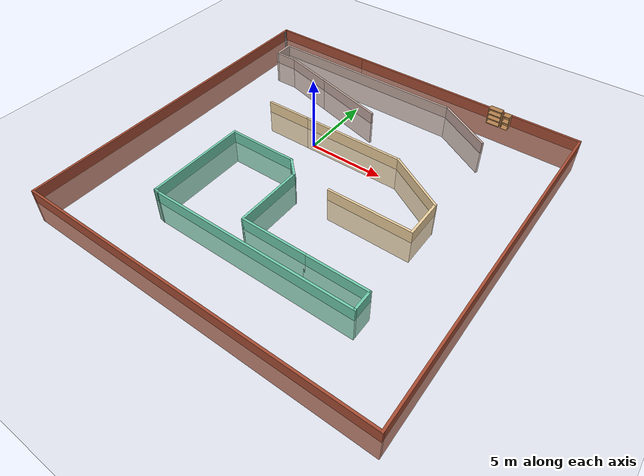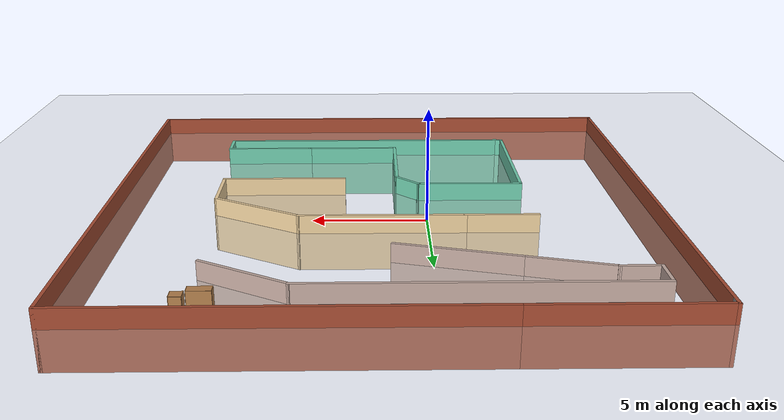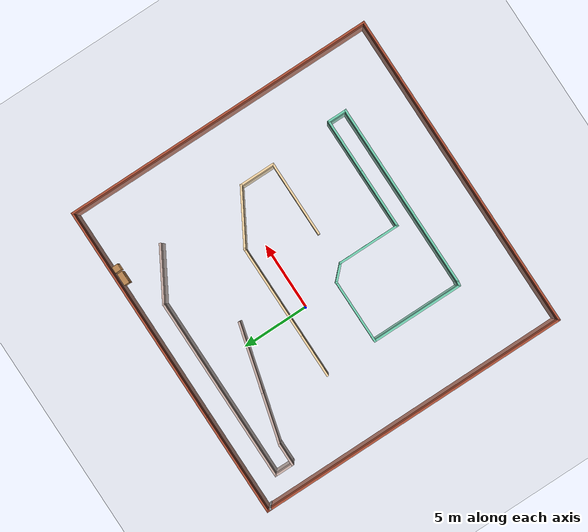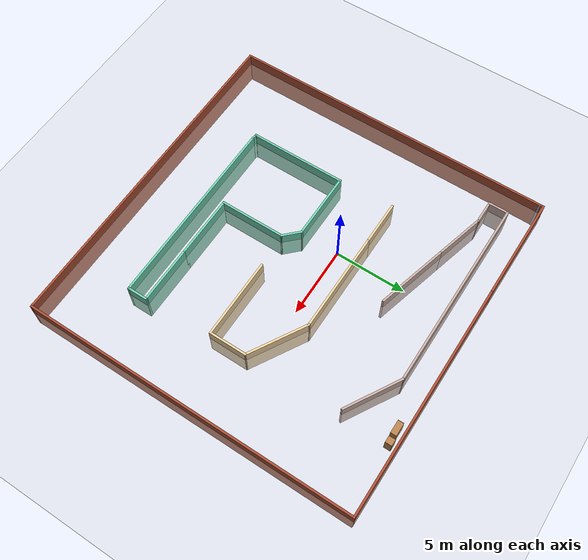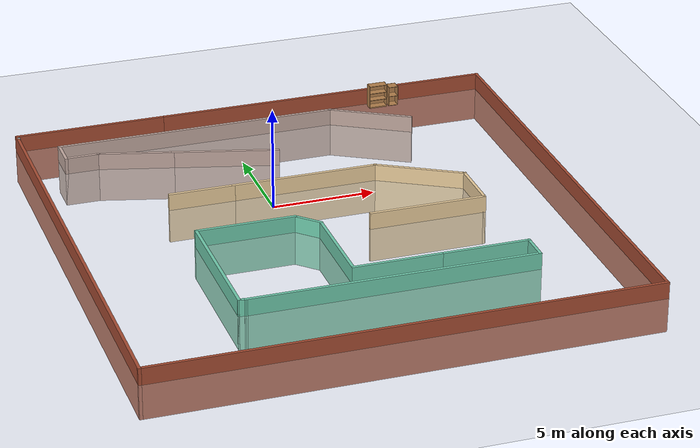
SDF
<sdf version="1.6">
 <world name="default">
  <light name="sun" type="directional">
   <pose>0 0 10 0 -0 0</pose>
   <diffuse>0.8 0.8 0.8 1</diffuse>
   <specular>0.2 0.2 0.2 1</specular>
   <attenuation>
    <range>1000</range>
    <constant>0.9</constant>
    <linear>0.01</linear>
    <quadratic>0.001</quadratic>
   </attenuation>
   <direction>-0.5 0.1 -0.9</direction>
  </light>
  <model name="ground_plane">
   <static>1</static>
   <link name="link">
    <collision name="collision">
     <geometry><plane><normal>0 0 1</normal><size>100 100</size></plane></geometry>
     <surface>
      <contact><collide_bitmask>65535</collide_bitmask></contact>
      <friction><ode><mu>100</mu><mu2>50</mu2></ode></friction>
     </surface>
    </collision>
    <visual name="visual">
     <cast_shadows>0</cast_shadows>
     <geometry><plane><normal>0 0 1</normal><size>100 100</size></plane></geometry>
     <material>
      <script><uri>file://media/materials/scripts/gazebo.material</uri><name>Gazebo/Grey</name></script>
     </material>
    </visual>
   </link>
  </model>
  <gravity>0 0 -9.8</gravity>
  <magnetic_field>6e-06 2.3e-05 -4.2e-05</magnetic_field>
  <atmosphere type="adiabatic"/>
  <physics name="default_physics" default="0" type="ode">
   <max_step_size>0.001</max_step_size>
   <real_time_factor>1</real_time_factor>
   <real_time_update_rate>1000</real_time_update_rate>
  </physics>
  <scene><ambient>0.4 0.4 0.4 1</ambient><background>0.7 0.7 0.7 1</background><shadows>1</shadows></scene>
  <audio><device>default</device></audio>
  <spherical_coordinates>
   <surface_model>EARTH_WGS84</surface_model>
   <latitude_deg>0</latitude_deg>
   <longitude_deg>0</longitude_deg>
   <elevation>0</elevation>
   <heading_deg>0</heading_deg>
  </spherical_coordinates>
  <model name="mst_world_wall">
   <pose>1.91645 -2.05889 -1.71601 0 -0 0</pose>
   <link name="Wall_15">
    <collision name="Wall_15_Collision">
     <geometry><box><size>16.75 0.15 2.5</size></box></geometry>
     <pose>0 0 1.25 0 -0 0</pose>
    </collision>
    <visual name="Wall_15_Visual">
     <pose>0 0 1.25 0 -0 0</pose>
     <geometry><box><size>16.75 0.15 2.5</size></box></geometry>
     <material>
      <script><uri>file://media/materials/scripts/gazebo.material</uri><name>Gazebo/Bricks</name></script>
      <ambient>0.760784 0.662745 0.627451 1</ambient>
     </material>
     <meta><layer>0</layer></meta>
    </visual>
    <pose>3.75 11.8 0 0 -0 0</pose>
   </link>
   <link name="Wall_16">
    <collision name="Wall_16_Collision">
     <geometry><box><size>23.75 0.15 2.5</size></box></geometry>
     <pose>0 0 1.25 0 -0 0</pose>
    </collision>
    <visual name="Wall_16_Visual">
     <pose>0 0 1.25 0 -0 0</pose>
     <geometry><box><size>23.75 0.15 2.5</size></box></geometry>
     <material>
      <script><uri>file://media/materials/scripts/gazebo.material</uri><name>Gazebo/Bricks</name></script>
      <ambient>0.435294 0.796078 0.67451 1</ambient>
     </material>
     <meta><layer>0</layer></meta>
    </visual>
    <pose>12.05 -0 0 0 -0 -1.5708</pose>
   </link>
   <link name="Wall_17">
    <collision name="Wall_17_Collision">
     <geometry><box><size>24.25 0.15 2.5</size></box></geometry>
     <pose>0 0 1.25 0 -0 0</pose>
    </collision>
    <visual name="Wall_17_Visual">
     <pose>0 0 1.25 0 -0 0</pose>
     <geometry><box><size>24.25 0.15 2.5</size></box></geometry>
     <material>
      <script><uri>file://media/materials/scripts/gazebo.material</uri><name>Gazebo/Bricks</name></script>
      <ambient>0.435294 0.796078 0.67451 1</ambient>
     </material>
     <meta><layer>0</layer></meta>
    </visual>
    <pose>0 -11.8 0 0 -0 3.14159</pose>
   </link>
   <link name="Wall_21">
    <collision name="Wall_21_Collision">
     <geometry><box><size>0.15 0.15 2.5</size></box></geometry>
     <pose>0 0 1.25 0 -0 0</pose>
    </collision>
    <visual name="Wall_21_Visual">
     <pose>0 0 1.25 0 -0 0</pose>
     <geometry><box><size>0.15 0.15 2.5</size></box></geometry>
     <material>
      <script><uri>file://media/materials/scripts/gazebo.material</uri><name>Gazebo/Grey</name></script>
      <ambient>1 1 1 1</ambient>
     </material>
     <meta><layer>0</layer></meta>
    </visual>
    <pose>-12.0155 11.55 0 0 -0 0</pose>
   </link>
   <link name="Wall_22">
    <collision name="Wall_22_Collision">
     <geometry><box><size>0.15 0.15 2.5</size></box></geometry>
     <pose>0 0 1.25 0 -0 0</pose>
    </collision>
    <visual name="Wall_22_Visual">
     <pose>0 0 1.25 0 -0 0</pose>
     <geometry><box><size>0.15 0.15 2.5</size></box></geometry>
     <material>
      <script><uri>file://media/materials/scripts/gazebo.material</uri><name>Gazebo/Bricks</name></script>
      <ambient>1 1 1 1</ambient>
     </material>
     <meta><layer>0</layer></meta>
    </visual>
    <pose>-12.0155 11.55 0 0 -0 0</pose>
   </link>
   <link name="Wall_28">
    <collision name="Wall_28_Collision">
     <geometry><box><size>23.75 0.15 2.5</size></box></geometry>
     <pose>0 0 1.25 0 -0 0</pose>
    </collision>
    <visual name="Wall_28_Visual">
     <pose>0 0 1.25 0 -0 0</pose>
     <geometry><box><size>23.75 0.15 2.5</size></box></geometry>
     <material>
      <script><uri>file://media/materials/scripts/gazebo.material</uri><name>Gazebo/Bricks</name></script>
      <ambient>1 1 1 1</ambient>
     </material>
     <meta><layer>0</layer></meta>
    </visual>
    <pose>-12.05 -0 0 0 -0 1.5708</pose>
   </link>
   <link name="Wall_29">
    <collision name="Wall_29_Collision">
     <geometry><box><size>7.65 0.15 2.5</size></box></geometry>
     <pose>0 0 1.25 0 -0 0</pose>
    </collision>
    <visual name="Wall_29_Visual">
     <pose>0 0 1.25 0 -0 0</pose>
     <geometry><box><size>7.65 0.15 2.5</size></box></geometry>
     <material>
      <script><uri>file://media/materials/scripts/gazebo.material</uri><name>Gazebo/Bricks</name></script>
      <ambient>1 1 1 1</ambient>
     </material>
     <meta><layer>0</layer></meta>
    </visual>
    <pose>-8.3 11.8 0 0 -0 0</pose>
   </link>
   <link name="Wall_31">
    <collision name="Wall_31_Collision">
     <geometry><box><size>4.89506 0.15 2.5</size></box></geometry>
     <pose>0 0 1.25 0 -0 0</pose>
    </collision>
    <visual name="Wall_31_Visual">
     <pose>0 0 1.25 0 -0 0</pose>
     <geometry><box><size>4.89506 0.15 2.5</size></box></geometry>
     <material>
      <script><uri>file://media/materials/scripts/gazebo.material</uri><name>Gazebo/Grey</name></script>
      <ambient>0.435294 0.796078 0.67451 1</ambient>
     </material>
     <meta><layer>0</layer></meta>
    </visual>
    <pose>-4.04016 -0.586586 0 0 -0 3.14159</pose>
   </link>
   <link name="Wall_34">
    <collision name="Wall_34_Collision">
     <geometry><box><size>1.5 0.15 2.5</size></box></geometry>
     <pose>0 0 1.25 0 -0 0</pose>
    </collision>
    <visual name="Wall_34_Visual">
     <pose>0 0 1.25 0 -0 0</pose>
     <geometry><box><size>1.5 0.15 2.5</size></box></geometry>
     <material>
      <script><uri>file://media/materials/scripts/gazebo.material</uri><name>Gazebo/Grey</name></script>
      <ambient>0.435294 0.796078 0.67451 1</ambient>
     </material>
     <meta><layer>0</layer></meta>
    </visual>
    <pose>-1.19033 -1.06388 0 0 -0 -0.785398</pose>
   </link>
   <link name="Wall_35">
    <collision name="Wall_35_Collision">
     <geometry><box><size>4.75 0.15 2.5</size></box></geometry>
     <pose>0 0 1.25 0 -0 0</pose>
    </collision>
    <visual name="Wall_35_Visual">
     <pose>0 0 1.25 0 -0 0</pose>
     <geometry><box><size>4.75 0.15 2.5</size></box></geometry>
     <material>
      <script><uri>file://media/materials/scripts/gazebo.material</uri><name>Gazebo/Grey</name></script>
      <ambient>0.435294 0.796078 0.67451 1</ambient>
     </material>
     <meta><layer>0</layer></meta>
    </visual>
    <pose>-0.713038 -3.84118 0 0 -0 -1.5708</pose>
   </link>
   <link name="Wall_36">
    <collision name="Wall_36_Collision">
     <geometry><box><size>4.5 0.15 2.5</size></box></geometry>
     <pose>0 0 1.25 0 -0 0</pose>
    </collision>
    <visual name="Wall_36_Visual">
     <pose>0 0 1.25 0 -0 0</pose>
     <geometry><box><size>4.5 0.15 2.5</size></box></geometry>
     <material>
      <script><uri>file://media/materials/scripts/gazebo.material</uri><name>Gazebo/Grey</name></script>
      <ambient>0.435294 0.796078 0.67451 1</ambient>
     </material>
     <meta><layer>0</layer></meta>
    </visual>
    <pose>1.46196 -6.14118 0 0 -0 0</pose>
   </link>
   <link name="Wall_37">
    <collision name="Wall_37_Collision">
     <geometry><box><size>4.25 0.15 2.5</size></box></geometry>
     <pose>0 0 1.25 0 -0 0</pose>
    </collision>
    <visual name="Wall_37_Visual">
     <pose>0 0 1.25 0 -0 0</pose>
     <geometry><box><size>4.25 0.15 2.5</size></box></geometry>
     <material>
      <script><uri>file://media/materials/scripts/gazebo.material</uri><name>Gazebo/Grey</name></script>
      <ambient>0.435294 0.796078 0.67451 1</ambient>
     </material>
     <meta><layer>0</layer></meta>
    </visual>
    <pose>5.68696 -6.14118 0 0 -0 0</pose>
   </link>
   <link name="Wall_40">
    <collision name="Wall_40_Collision">
     <geometry><box><size>5.75 0.15 2.5</size></box></geometry>
     <pose>0 0 1.25 0 -0 0</pose>
    </collision>
    <visual name="Wall_40_Visual">
     <pose>0 0 1.25 0 -0 0</pose>
     <geometry><box><size>5.75 0.15 2.5</size></box></geometry>
     <material>
      <script><uri>file://media/materials/scripts/gazebo.material</uri><name>Gazebo/Grey</name></script>
      <ambient>0.921569 0.807843 0.615686 1</ambient>
     </material>
     <meta><layer>0</layer></meta>
    </visual>
    <pose>4.58949 -1.39467 0 0 -0 0</pose>
   </link>
   <link name="Wall_41">
    <collision name="Wall_41_Collision">
     <geometry><box><size>2.75 0.15 2.5</size></box></geometry>
     <pose>0 0 1.25 0 -0 0</pose>
    </collision>
    <visual name="Wall_41_Visual">
     <pose>0 0 1.25 0 -0 0</pose>
     <geometry><box><size>2.75 0.15 2.5</size></box></geometry>
     <material>
      <script><uri>file://media/materials/scripts/gazebo.material</uri><name>Gazebo/Grey</name></script>
      <ambient>0.921569 0.807843 0.615686 1</ambient>
     </material>
     <meta><layer>0</layer></meta>
    </visual>
    <pose>7.38949 -0.094666 0 0 -0 1.5708</pose>
   </link>
   <link name="Wall_43">
    <collision name="Wall_43_Collision">
     <geometry><box><size>1.5 0.15 2.5</size></box></geometry>
     <pose>0 0 1.25 0 -0 0</pose>
    </collision>
    <visual name="Wall_43_Visual">
     <pose>0 0 1.25 0 -0 0</pose>
     <geometry><box><size>1.5 0.15 2.5</size></box></geometry>
     <material>
      <script><uri>file://media/materials/scripts/gazebo.material</uri><name>Gazebo/Grey</name></script>
      <ambient>0.435294 0.796078 0.67451 1</ambient>
     </material>
     <meta><layer>0</layer></meta>
    </visual>
    <pose>7.73696 -6.81618 0 0 -0 -1.5708</pose>
   </link>
   <link name="Wall_44">
    <collision name="Wall_44_Collision">
     <geometry><box><size>14 0.15 2.5</size></box></geometry>
     <pose>0 0 1.25 0 -0 0</pose>
    </collision>
    <visual name="Wall_44_Visual">
     <pose>0 0 1.25 0 -0 0</pose>
     <geometry><box><size>14 0.15 2.5</size></box></geometry>
     <material>
      <script><uri>file://media/materials/scripts/gazebo.material</uri><name>Gazebo/Grey</name></script>
      <ambient>0.435294 0.796078 0.67451 1</ambient>
     </material>
     <meta><layer>0</layer></meta>
    </visual>
    <pose>0.811962 -7.49118 0 0 -0 3.14159</pose>
   </link>
   <link name="Wall_46">
    <collision name="Wall_46_Collision">
     <geometry><box><size>7 0.15 2.5</size></box></geometry>
     <pose>0 0 1.25 0 -0 0</pose>
    </collision>
    <visual name="Wall_46_Visual">
     <pose>0 0 1.25 0 -0 0</pose>
     <geometry><box><size>7 0.15 2.5</size></box></geometry>
     <material>
      <script><uri>file://media/materials/scripts/gazebo.material</uri><name>Gazebo/Grey</name></script>
      <ambient>0.435294 0.796078 0.67451 1</ambient>
     </material>
     <meta><layer>0</layer></meta>
    </visual>
    <pose>-6.41269 -4.01159 0 0 -0 -1.5708</pose>
   </link>
   <link name="Wall_47">
    <collision name="Wall_47_Collision">
     <geometry><box><size>0.15 0.15 2.5</size></box></geometry>
     <pose>0 0 1.25 0 -0 0</pose>
    </collision>
    <visual name="Wall_47_Visual">
     <pose>0 0 1.25 0 -0 0</pose>
     <geometry><box><size>0.15 0.15 2.5</size></box></geometry>
     <material>
      <script><uri>file://media/materials/scripts/gazebo.material</uri><name>Gazebo/Grey</name></script>
      <ambient>0.435294 0.796078 0.67451 1</ambient>
     </material>
     <meta><layer>0</layer></meta>
    </visual>
    <pose>-6.41269 -7.43659 0 0 -0 0</pose>
   </link>
   <link name="Wall_48">
    <collision name="Wall_48_Collision">
     <geometry><box><size>0.454586 0.15 2.5</size></box></geometry>
     <pose>0 0 1.25 0 -0 0</pose>
    </collision>
    <visual name="Wall_48_Visual">
     <pose>0 0 1.25 0 -0 0</pose>
     <geometry><box><size>0.454586 0.15 2.5</size></box></geometry>
     <material>
      <script><uri>file://media/materials/scripts/gazebo.material</uri><name>Gazebo/Grey</name></script>
      <ambient>0.435294 0.796078 0.67451 1</ambient>
     </material>
     <meta><layer>0</layer></meta>
    </visual>
    <pose>-6.26286 -7.46388 0 0 -0 -0.180214</pose>
   </link>
   <link name="Wall_54">
    <collision name="Wall_54_Collision">
     <geometry><box><size>4.5 0.15 2.5</size></box></geometry>
     <pose>0 0 1.25 0 -0 0</pose>
    </collision>
    <visual name="Wall_54_Visual">
     <pose>0 0 1.25 0 -0 0</pose>
     <geometry><box><size>4.5 0.15 2.5</size></box></geometry>
     <material>
      <script><uri>file://media/materials/scripts/gazebo.material</uri><name>Gazebo/Grey</name></script>
      <ambient>0.921569 0.807843 0.615686 1</ambient>
     </material>
     <meta><layer>0</layer></meta>
    </visual>
    <pose>5.50588 2.29283 0 0 -0 2.61799</pose>
   </link>
   <link name="Wall_55">
    <collision name="Wall_55_Collision">
     <geometry><box><size>7.25 0.15 2.5</size></box></geometry>
     <pose>0 0 1.25 0 -0 0</pose>
    </collision>
    <visual name="Wall_55_Visual">
     <pose>0 0 1.25 0 -0 0</pose>
     <geometry><box><size>7.25 0.15 2.5</size></box></geometry>
     <material>
      <script><uri>file://media/materials/scripts/gazebo.material</uri><name>Gazebo/Grey</name></script>
      <ambient>0.921569 0.807843 0.615686 1</ambient>
     </material>
     <meta><layer>0</layer></meta>
    </visual>
    <pose>0.072276 3.38033 0 0 -0 3.14159</pose>
   </link>
   <link name="Wall_59">
    <collision name="Wall_59_Collision">
     <geometry><box><size>5.25 0.15 2.5</size></box></geometry>
     <pose>0 0 1.25 0 -0 0</pose>
    </collision>
    <visual name="Wall_59_Visual">
     <pose>0 0 1.25 0 -0 0</pose>
     <geometry><box><size>5.25 0.15 2.5</size></box></geometry>
     <material>
      <script><uri>file://media/materials/scripts/gazebo.material</uri><name>Gazebo/Grey</name></script>
      <ambient>0.760784 0.662745 0.627451 1</ambient>
     </material>
     <meta><layer>0</layer></meta>
    </visual>
    <pose>-2.78935 7.07926 0 0 -0 2.87979</pose>
   </link>
   <link name="Wall_60">
    <collision name="Wall_60_Collision">
     <geometry><box><size>3.75 0.15 2.5</size></box></geometry>
     <pose>0 0 1.25 0 -0 0</pose>
    </collision>
    <visual name="Wall_60_Visual">
     <pose>0 0 1.25 0 -0 0</pose>
     <geometry><box><size>3.75 0.15 2.5</size></box></geometry>
     <material>
      <script><uri>file://media/materials/scripts/gazebo.material</uri><name>Gazebo/Grey</name></script>
      <ambient>0.760784 0.662745 0.627451 1</ambient>
     </material>
     <meta><layer>0</layer></meta>
    </visual>
    <pose>-6.99112 8.20512 0 0 -0 2.87979</pose>
   </link>
   <link name="Wall_62">
    <collision name="Wall_62_Collision">
     <geometry><box><size>1.75 0.15 2.5</size></box></geometry>
     <pose>0 0 1.25 0 -0 0</pose>
    </collision>
    <visual name="Wall_62_Visual">
     <pose>0 0 1.25 0 -0 0</pose>
     <geometry><box><size>1.75 0.15 2.5</size></box></geometry>
     <material>
      <script><uri>file://media/materials/scripts/gazebo.material</uri><name>Gazebo/Grey</name></script>
      <ambient>0.760784 0.662745 0.627451 1</ambient>
     </material>
     <meta><layer>0</layer></meta>
    </visual>
    <pose>-9.52979 8.671 0 0 -0 3.14159</pose>
   </link>
   <link name="Wall_63">
    <collision name="Wall_63_Collision">
     <geometry><box><size>1.5 0.15 2.5</size></box></geometry>
     <pose>0 0 1.25 0 -0 0</pose>
    </collision>
    <visual name="Wall_63_Visual">
     <pose>0 0 1.25 0 -0 0</pose>
     <geometry><box><size>1.5 0.15 2.5</size></box></geometry>
     <material>
      <script><uri>file://media/materials/scripts/gazebo.material</uri><name>Gazebo/Grey</name></script>
      <ambient>0.760784 0.662745 0.627451 1</ambient>
     </material>
     <meta><layer>0</layer></meta>
    </visual>
    <pose>-10.3298 9.346 0 0 -0 1.5708</pose>
   </link>
   <link name="Wall_64">
    <collision name="Wall_64_Collision">
     <geometry><box><size>14 0.15 2.5</size></box></geometry>
     <pose>0 0 1.25 0 -0 0</pose>
    </collision>
    <visual name="Wall_64_Visual">
     <pose>0 0 1.25 0 -0 0</pose>
     <geometry><box><size>14 0.15 2.5</size></box></geometry>
     <material>
      <script><uri>file://media/materials/scripts/gazebo.material</uri><name>Gazebo/Grey</name></script>
      <ambient>0.760784 0.662745 0.627451 1</ambient>
     </material>
     <meta><layer>0</layer></meta>
    </visual>
    <pose>-3.40479 10.021 0 0 -0 0</pose>
   </link>
   <link name="Wall_65">
    <collision name="Wall_65_Collision">
     <geometry><box><size>4.25 0.15 2.5</size></box></geometry>
     <pose>0 0 1.25 0 -0 0</pose>
    </collision>
    <visual name="Wall_65_Visual">
     <pose>0 0 1.25 0 -0 0</pose>
     <geometry><box><size>4.25 0.15 2.5</size></box></geometry>
     <material>
      <script><uri>file://media/materials/scripts/gazebo.material</uri><name>Gazebo/Grey</name></script>
      <ambient>0.760784 0.662745 0.627451 1</ambient>
     </material>
     <meta><layer>0</layer></meta>
    </visual>
    <pose>5.29556 8.996 0 0 -0 -0.523599</pose>
   </link>
   <link name="Wall_67">
    <collision name="Wall_67_Collision">
     <geometry><box><size>3.25 0.15 2.5</size></box></geometry>
     <pose>0 0 1.25 0 -0 0</pose>
    </collision>
    <visual name="Wall_67_Visual">
     <pose>0 0 1.25 0 -0 0</pose>
     <geometry><box><size>3.25 0.15 2.5</size></box></geometry>
     <material>
      <script><uri>file://media/materials/scripts/gazebo.material</uri><name>Gazebo/Grey</name></script>
      <ambient>0.921569 0.807843 0.615686 1</ambient>
     </material>
     <meta><layer>0</layer></meta>
    </visual>
    <pose>-5.02772 3.38033 0 0 -0 3.14159</pose>
   </link>
   <static>1</static>
  </model>
  <model name="cabinet">
   <static>1</static>
   <link name="cabinet_bottom_plate">
    <inertial>
     <pose>0 0 -1 0 -0 0</pose>
     <inertia><ixx>2.05</ixx><ixy>0</ixy><ixz>0</ixz><iyy>2.05</iyy><iyz>0</iyz><izz>2.05</izz></inertia>
     <mass>25</mass>
    </inertial>
    <collision name="cabinet_bottom_plate_geom">
     <pose>0 0 0.01 0 -0 0</pose>
     <geometry><box><size>0.45 0.45 0.02</size></box></geometry>
    </collision>
    <visual name="cabinet_bottom_plate_geom_visual">
     <pose>0 0 0.01 0 -0 0</pose>
     <geometry><box><size>0.45 0.45 0.02</size></box></geometry>
     <material>
      <script><uri>file://media/materials/scripts/gazebo.material</uri><name>Gazebo/Wood</name></script>
     </material>
    </visual>
    <collision name="cabinet_bottom_plate_geom_cabinet_back_plate">
     <pose>0.235 0 0.51 0 -0 0</pose>
     <geometry><box><size>0.02 0.45 1.02</size></box></geometry>
    </collision>
    <visual name="cabinet_bottom_plate_geom_cabinet_back_plate_visual">
     <pose>0.235 0 0.51 0 -0 0</pose>
     <geometry><box><size>0.02 0.45 1.02</size></box></geometry>
     <material>
      <script><uri>file://media/materials/scripts/gazebo.material</uri><name>Gazebo/Wood</name></script>
     </material>
    </visual>
    <collision name="cabinet_bottom_plate_geom_cabinet_left_plate">
     <pose>0 0.235 0.51 0 -0 0</pose>
     <geometry><box><size>0.45 0.02 1.02</size></box></geometry>
    </collision>
    <visual name="cabinet_bottom_plate_geom_cabinet_left_plate_visual">
     <pose>0 0.235 0.51 0 -0 0</pose>
     <geometry><box><size>0.45 0.02 1.02</size></box></geometry>
     <material>
      <script><uri>file://media/materials/scripts/gazebo.material</uri><name>Gazebo/Wood</name></script>
     </material>
    </visual>
    <collision name="cabinet_bottom_plate_geom_cabinet_middle_plate">
     <pose>0 0 0.51 0 -0 0</pose>
     <geometry><box><size>0.45 0.45 0.02</size></box></geometry>
    </collision>
    <visual name="cabinet_bottom_plate_geom_cabinet_middle_plate_visual">
     <pose>0 0 0.51 0 -0 0</pose>
     <geometry><box><size>0.45 0.45 0.02</size></box></geometry>
     <material>
      <script><uri>file://media/materials/scripts/gazebo.material</uri><name>Gazebo/Wood</name></script>
     </material>
    </visual>
    <collision name="cabinet_bottom_plate_geom_cabinet_right_plate">
     <pose>0 -0.235 0.51 0 -0 0</pose>
     <geometry><box><size>0.45 0.02 1.02</size></box></geometry>
    </collision>
    <visual name="cabinet_bottom_plate_geom_cabinet_right_plate_visual">
     <pose>0 -0.235 0.51 0 -0 0</pose>
     <geometry><box><size>0.45 0.02 1.02</size></box></geometry>
     <material>
      <script><uri>file://media/materials/scripts/gazebo.material</uri><name>Gazebo/Wood</name></script>
     </material>
    </visual>
    <collision name="cabinet_bottom_plate_geom_cabinet_top_plate">
     <pose>0 0 1.01 0 -0 0</pose>
     <geometry><box><size>0.45 0.45 0.02</size></box></geometry>
    </collision>
    <visual name="cabinet_bottom_plate_geom_cabinet_top_plate_visual">
     <pose>0 0 1.01 0 -0 0</pose>
     <geometry><box><size>0.45 0.45 0.02</size></box></geometry>
     <material>
      <script><uri>file://media/materials/scripts/gazebo.material</uri><name>Gazebo/Wood</name></script>
     </material>
    </visual>
   </link>
   <pose>9.18804 9.24965 0 0 -0 1.57359</pose>
  </model>
  <model name="bookshelf">
   <static>1</static>
   <link name="link">
    <inertial><mass>1</mass></inertial>
    <collision name="back">
     <pose>0 0.005 0.6 0 -0 0</pose>
     <geometry><box><size>0.9 0.01 1.2</size></box></geometry>
    </collision>
    <visual name="visual1">
     <pose>0 0.005 0.6 0 -0 0</pose>
     <geometry><box><size>0.9 0.01 1.2</size></box></geometry>
     <material>
      <script><uri>file://media/materials/scripts/gazebo.material</uri><name>Gazebo/Wood</name></script>
     </material>
    </visual>
    <collision name="left_side">
     <pose>0.45 -0.195 0.6 0 -0 0</pose>
     <geometry><box><size>0.02 0.4 1.2</size></box></geometry>
    </collision>
    <visual name="visual2">
     <pose>0.45 -0.195 0.6 0 -0 0</pose>
     <geometry><box><size>0.02 0.4 1.2</size></box></geometry>
     <material>
      <script><uri>file://media/materials/scripts/gazebo.material</uri><name>Gazebo/Wood</name></script>
     </material>
    </visual>
    <collision name="right_side">
     <pose>-0.45 -0.195 0.6 0 -0 0</pose>
     <geometry><box><size>0.02 0.4 1.2</size></box></geometry>
    </collision>
    <visual name="visual3">
     <pose>-0.45 -0.195 0.6 0 -0 0</pose>
     <geometry><box><size>0.02 0.4 1.2</size></box></geometry>
     <material>
      <script><uri>file://media/materials/scripts/gazebo.material</uri><name>Gazebo/Wood</name></script>
     </material>
    </visual>
    <collision name="bottom">
     <pose>0 -0.195 0.03 0 -0 0</pose>
     <geometry><box><size>0.88 0.4 0.06</size></box></geometry>
    </collision>
    <visual name="visual4">
     <pose>0 -0.195 0.03 0 -0 0</pose>
     <geometry><box><size>0.88 0.4 0.06</size></box></geometry>
     <material>
      <script><uri>file://media/materials/scripts/gazebo.material</uri><name>Gazebo/Wood</name></script>
     </material>
    </visual>
    <collision name="top">
     <pose>0 -0.195 1.19 0 -0 0</pose>
     <geometry><box><size>0.88 0.4 0.02</size></box></geometry>
    </collision>
    <visual name="visual5">
     <pose>0 -0.195 1.19 0 -0 0</pose>
     <geometry><box><size>0.88 0.4 0.02</size></box></geometry>
     <material>
      <script><uri>file://media/materials/scripts/gazebo.material</uri><name>Gazebo/Wood</name></script>
     </material>
    </visual>
    <collision name="low_shelf">
     <pose>0 -0.195 0.43 0 -0 0</pose>
     <geometry><box><size>0.88 0.4 0.02</size></box></geometry>
    </collision>
    <visual name="visual6">
     <pose>0 -0.195 0.43 0 -0 0</pose>
     <geometry><box><size>0.88 0.4 0.02</size></box></geometry>
     <material>
      <script><uri>file://media/materials/scripts/gazebo.material</uri><name>Gazebo/Wood</name></script>
     </material>
    </visual>
    <collision name="high_shelf">
     <pose>0 -0.195 0.8 0 -0 0</pose>
     <geometry><box><size>0.88 0.4 0.02</size></box></geometry>
    </collision>
    <visual name="visual7">
     <pose>0 -0.195 0.8 0 -0 0</pose>
     <geometry><box><size>0.88 0.4 0.02</size></box></geometry>
     <material>
      <script><uri>file://media/materials/scripts/gazebo.material</uri><name>Gazebo/Wood</name></script>
     </material>
    </visual>
   </link>
   <pose>8.37408 9.40663 0 0 -0 0</pose>
  </model>
 </world>
</sdf>
